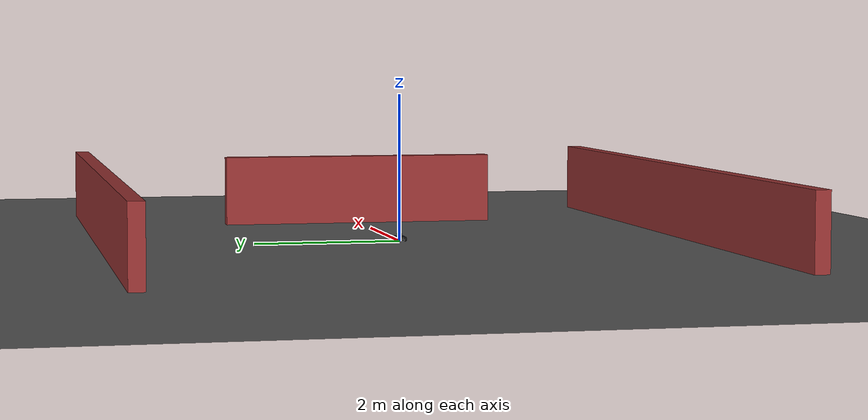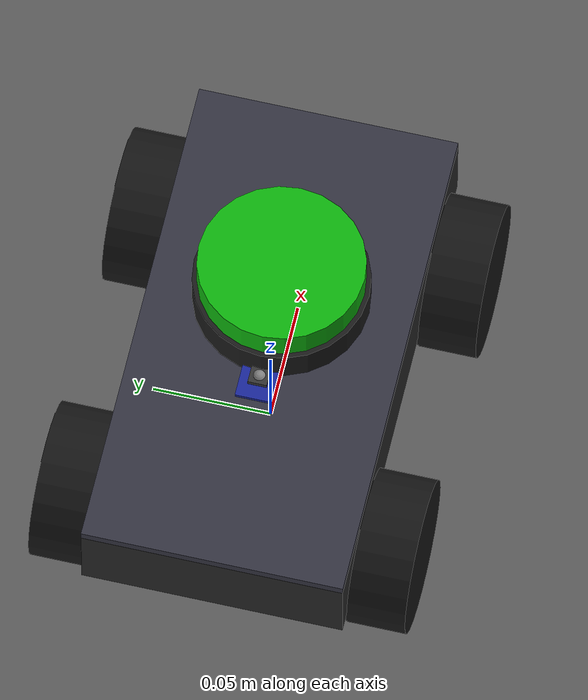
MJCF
<mujoco model="lidarbot">
  <compiler angle="degree" coordinate="local"/>
  <option timestep="0.002" gravity="0 0 -9.81"/>

  <visual>
    <map znear="0.01" zfar="50"/>
    <rgba contactpoint="0 0 0 0" contactforce="0 0 0 0"/>
  </visual>

  <default>
    <joint damping="0.5" armature="0.01"/>
    <geom friction="1.0 0.1 0.1" density="1000"/>
  </default>

  <asset>
    <texture type="2d" name="grid" builtin="checker" width="512" height="512"
             rgb1="0.3 0.3 0.3" rgb2="0.4 0.4 0.4"/>
    <material name="grid_mat" texture="grid" texrepeat="10 10" texuniform="true"/>
    <material name="wall_mat" rgba="0.6 0.2 0.2 1"/>
    <material name="chassis_mat" rgba="0.15 0.15 0.15 1"/>
    <material name="deck_mat" rgba="0.2 0.2 0.25 1"/>
    <material name="wheel_mat" rgba="0.08 0.08 0.08 1"/>
    <material name="caster_mat" rgba="0.5 0.5 0.5 1"/>
    <material name="lidar_base_mat" rgba="0.1 0.1 0.1 1"/>
    <material name="lidar_top_mat" rgba="0.05 0.7 0.05 1"/>
    <material name="imu_pcb_mat" rgba="0.1 0.15 0.6 1"/>
    <material name="imu_chip_mat" rgba="0.2 0.2 0.2 1"/>
  </asset>

  <worldbody>
    <geom name="ground" type="plane" size="10 10 0.1" material="grid_mat"/>

    <!-- Barrier wall in front of spawn -->
    <body name="barrier" pos="3 0 0.5">
      <geom type="box" size="0.1 2 0.5" material="wall_mat"/>
    </body>
    <!-- Side walls -->
    <body name="wall_left" pos="0 4 0.5">
      <geom type="box" size="5 0.1 0.5" material="wall_mat"/>
    </body>
    <body name="wall_right" pos="0 -4 0.5">
      <geom type="box" size="5 0.1 0.5" material="wall_mat"/>
    </body>

    <body name="base" pos="0 0 0.0325">
      <joint name="root" type="free"/>

      <!-- Chassis plate -->
      <geom name="chassis" type="box"
            size="0.105 0.055 0.0175"
            pos="0 0 0.0175"
            mass="0.864" material="chassis_mat"/>

      <!-- Top deck (thin plate where components sit) -->
      <geom name="deck" type="box"
            size="0.105 0.055 0.002"
            pos="0 0 0.037"
            mass="0.1" material="deck_mat"/>

      <!-- ===== LiDAR (flat on top of chassis, no stick) ===== -->
      <!-- Base cylinder -->
      <geom name="lidar_base" type="cylinder"
            size="0.037 0.008"
            pos="0.02 0 0.047"
            mass="0.04" material="lidar_base_mat"/>
      <!-- Top spinning dome -->
      <geom name="lidar_top" type="cylinder"
            size="0.035 0.007"
            pos="0.02 0 0.062"
            mass="0.03" material="lidar_top_mat"/>

      <!-- LiDAR raycast site (at lidar centre height) -->
      <site name="lidar_site" pos="0.02 0 0.055" size="0.005"/>

      <!-- ===== IMU (MPU6050 breakout, behind lidar on deck) ===== -->
      <!-- PCB board: ~20x16x1.5mm, classic blue breakout -->
      <geom name="imu_pcb" type="box"
            size="0.010 0.008 0.00075"
            pos="-0.02 0 0.0405"
            mass="0.005" material="imu_pcb_mat"/>
      <!-- Chip on top of PCB -->
      <geom name="imu_chip" type="box"
            size="0.004 0.004 0.001"
            pos="-0.02 0 0.0425"
            mass="0.002" material="imu_chip_mat"/>
      <!-- IMU sensor site (on the chip) -->
      <site name="imu_site" pos="-0.02 0 0.042" size="0.003"/>

      <!-- ===== 4 Drive wheels (differential: left pair vs right pair) ===== -->
      <!-- Front Left -->
      <body name="wheel_fl" pos="0.065 0.067 0">
        <joint name="joint_fl" type="hinge" axis="0 1 0"/>
        <geom type="cylinder" size="0.0325 0.0125" euler="90 0 0"
              mass="0.031" material="wheel_mat"
              friction="1.16 0.1 0.1"/>
      </body>

      <!-- Front Right -->
      <body name="wheel_fr" pos="0.065 -0.067 0">
        <joint name="joint_fr" type="hinge" axis="0 1 0"/>
        <geom type="cylinder" size="0.0325 0.0125" euler="90 0 0"
              mass="0.031" material="wheel_mat"
              friction="1.16 0.1 0.1"/>
      </body>

      <!-- Rear Left -->
      <body name="wheel_rl" pos="-0.065 0.067 0">
        <joint name="joint_rl" type="hinge" axis="0 1 0"/>
        <geom type="cylinder" size="0.0325 0.0125" euler="90 0 0"
              mass="0.031" material="wheel_mat"
              friction="1.16 0.1 0.1"/>
      </body>

      <!-- Rear Right -->
      <body name="wheel_rr" pos="-0.065 -0.067 0">
        <joint name="joint_rr" type="hinge" axis="0 1 0"/>
        <geom type="cylinder" size="0.0325 0.0125" euler="90 0 0"
              mass="0.031" material="wheel_mat"
              friction="1.16 0.1 0.1"/>
      </body>
    </body>
  </worldbody>

  <sensor>
    <accelerometer name="imu_accel" site="imu_site"/>
    <gyro          name="imu_gyro"  site="imu_site"/>
  </sensor>

  <actuator>
    <motor name="motor_fl" joint="joint_fl" gear="20" ctrlrange="-1 1"/>
    <motor name="motor_fr" joint="joint_fr" gear="20" ctrlrange="-1 1"/>
    <motor name="motor_rl" joint="joint_rl" gear="20" ctrlrange="-1 1"/>
    <motor name="motor_rr" joint="joint_rr" gear="20" ctrlrange="-1 1"/>
  </actuator>
</mujoco>
